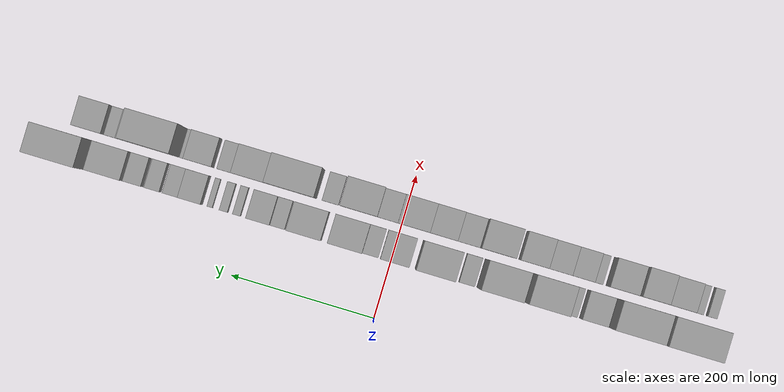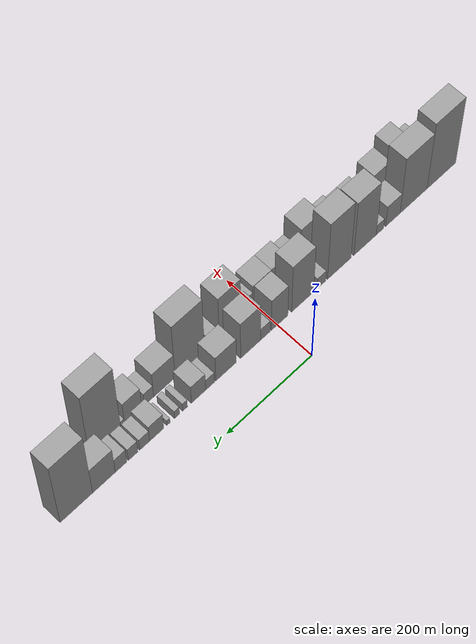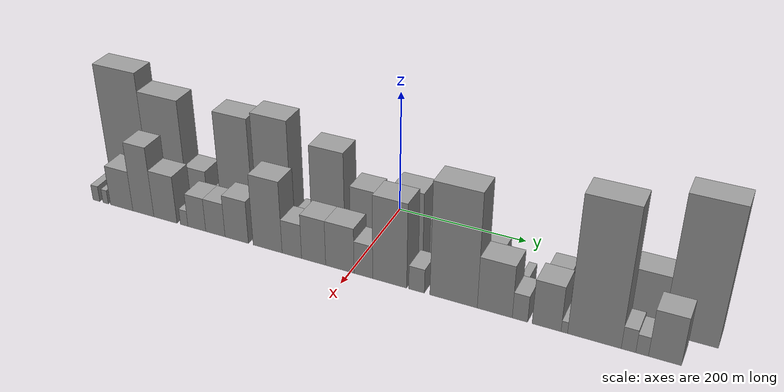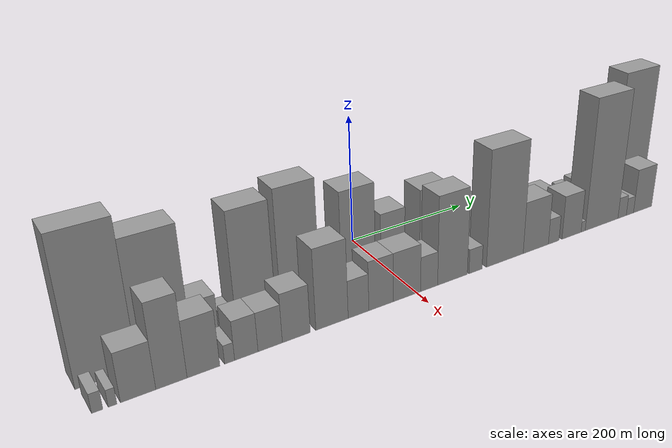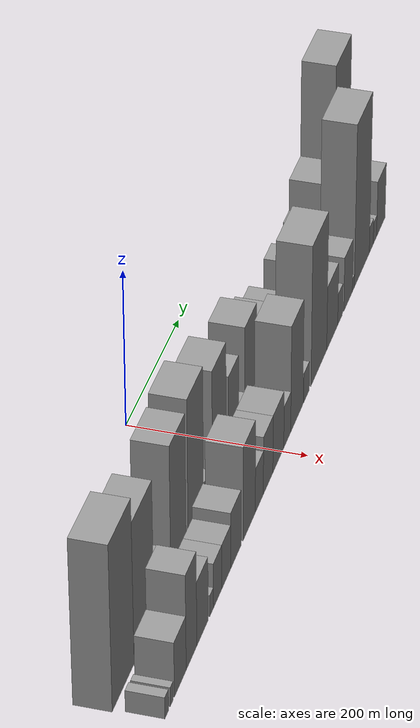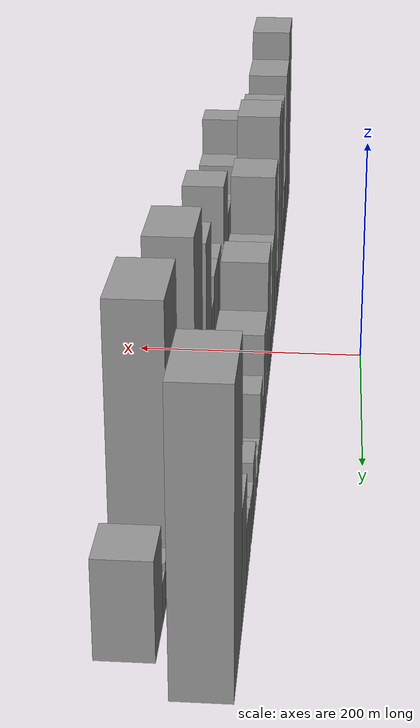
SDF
<sdf version="1.6">
 <world name="default">
  <scene>
   <sky><clouds><speed>12</speed></clouds></sky>
   <ambient>0.4 0.4 0.4 1</ambient>
   <background>0.7 0.7 0.7 1</background>
   <shadows>1</shadows>
  </scene>
  <gravity>0 0 -9.8066</gravity>
  <magnetic_field>6e-06 2.3e-05 -4.2e-05</magnetic_field>
  <physics default="0" name="default_physics" type="ode">
   <ode>
    <solver>
     <type>quick</type>
     <iters>10</iters>
     <sor>1.0</sor>
     <use_dynamic_moi_rescaling>0</use_dynamic_moi_rescaling>
    </solver>
    <constraints>
     <cfm>0</cfm>
     <erp>0.2</erp>
     <contact_max_correcting_vel>100</contact_max_correcting_vel>
     <contact_surface_layer>0.001</contact_surface_layer>
    </constraints>
   </ode>
   <max_step_size>0.004</max_step_size>
   <real_time_factor>1</real_time_factor>
   <real_time_update_rate>250</real_time_update_rate>
  </physics>
  <light name="sun" type="directional">
   <pose>0 0 10 0 0 0</pose>
   <diffuse>0.8 0.8 0.8 1</diffuse>
   <specular>0.2 0.2 0.2 1</specular>
   <attenuation>
    <range>1000</range>
    <constant>0.9</constant>
    <linear>0.01</linear>
    <quadratic>0.001</quadratic>
   </attenuation>
   <direction>-0.5 0.1 -0.9</direction>
  </light>
  <model name="building_1">
   <static>1</static>
   <pose>100.0000 -407.0354 0 0.000000 0.000000 0.000000</pose>
   <link name="link">
    <pose>0 0 103.50 0 0 0</pose>
    <collision name="collision"><geometry><box><size>40.0000 73.9293 207.0000</size></box></geometry></collision>
    <visual name="visual">
     <cast_shadows>0</cast_shadows>
     <geometry><box><size>40.0000 73.9293 207.0000</size></box></geometry>
     <material>
      <script>
       <uri>model://grey_wall/materials/scripts</uri>
       <uri>model://grey_wall/materials/textures</uri>
       <name>vrc/grey_wall</name>
      </script>
     </material>
    </visual>
   </link>
  </model>
  <model name="building_2">
   <static>1</static>
   <pose>100.0000 -335.6535 0 0.000000 0.000000 0.000000</pose>
   <link name="link">
    <pose>0 0 88.50 0 0 0</pose>
    <collision name="collision"><geometry><box><size>40.0000 68.8345 177.0000</size></box></geometry></collision>
    <visual name="visual">
     <cast_shadows>0</cast_shadows>
     <geometry><box><size>40.0000 68.8345 177.0000</size></box></geometry>
     <material>
      <script>
       <uri>model://grey_wall/materials/scripts</uri>
       <uri>model://grey_wall/materials/textures</uri>
       <name>vrc/grey_wall</name>
      </script>
     </material>
    </visual>
   </link>
  </model>
  <model name="building_3">
   <static>1</static>
   <pose>100.0000 -283.0258 0 0.000000 0.000000 0.000000</pose>
   <link name="link">
    <pose>0 0 33.00 0 0 0</pose>
    <collision name="collision"><geometry><box><size>40.0000 36.4208 66.0000</size></box></geometry></collision>
    <visual name="visual">
     <cast_shadows>0</cast_shadows>
     <geometry><box><size>40.0000 36.4208 66.0000</size></box></geometry>
     <material>
      <script>
       <uri>model://grey_wall/materials/scripts</uri>
       <uri>model://grey_wall/materials/textures</uri>
       <name>vrc/grey_wall</name>
      </script>
     </material>
    </visual>
   </link>
  </model>
  <model name="building_4">
   <static>1</static>
   <pose>100.0000 -250.5528 0 0.000000 0.000000 0.000000</pose>
   <link name="link">
    <pose>0 0 16.50 0 0 0</pose>
    <collision name="collision"><geometry><box><size>40.0000 18.5253 33.0000</size></box></geometry></collision>
    <visual name="visual">
     <cast_shadows>0</cast_shadows>
     <geometry><box><size>40.0000 18.5253 33.0000</size></box></geometry>
     <material>
      <script>
       <uri>model://grey_wall/materials/scripts</uri>
       <uri>model://grey_wall/materials/textures</uri>
       <name>vrc/grey_wall</name>
      </script>
     </material>
    </visual>
   </link>
  </model>
  <model name="building_5">
   <static>1</static>
   <pose>100.0000 -213.3810 0 0.000000 0.000000 0.000000</pose>
   <link name="link">
    <pose>0 0 87.00 0 0 0</pose>
    <collision name="collision"><geometry><box><size>40.0000 55.8183 174.0000</size></box></geometry></collision>
    <visual name="visual">
     <cast_shadows>0</cast_shadows>
     <geometry><box><size>40.0000 55.8183 174.0000</size></box></geometry>
     <material>
      <script>
       <uri>model://grey_wall/materials/scripts</uri>
       <uri>model://grey_wall/materials/textures</uri>
       <name>vrc/grey_wall</name>
      </script>
     </material>
    </visual>
   </link>
  </model>
  <model name="building_6">
   <static>1</static>
   <pose>100.0000 -149.5200 0 0.000000 0.000000 0.000000</pose>
   <link name="link">
    <pose>0 0 93.00 0 0 0</pose>
    <collision name="collision"><geometry><box><size>40.0000 57.9037 186.0000</size></box></geometry></collision>
    <visual name="visual">
     <cast_shadows>0</cast_shadows>
     <geometry><box><size>40.0000 57.9037 186.0000</size></box></geometry>
     <material>
      <script>
       <uri>model://grey_wall/materials/scripts</uri>
       <uri>model://grey_wall/materials/textures</uri>
       <name>vrc/grey_wall</name>
      </script>
     </material>
    </visual>
   </link>
  </model>
  <model name="building_7">
   <static>1</static>
   <pose>100.0000 -105.8171 0 0.000000 0.000000 0.000000</pose>
   <link name="link">
    <pose>0 0 18.00 0 0 0</pose>
    <collision name="collision"><geometry><box><size>40.0000 21.5021 36.0000</size></box></geometry></collision>
    <visual name="visual">
     <cast_shadows>0</cast_shadows>
     <geometry><box><size>40.0000 21.5021 36.0000</size></box></geometry>
     <material>
      <script>
       <uri>model://grey_wall/materials/scripts</uri>
       <uri>model://grey_wall/materials/textures</uri>
       <name>vrc/grey_wall</name>
      </script>
     </material>
    </visual>
   </link>
  </model>
  <model name="building_8">
   <static>1</static>
   <pose>100.0000 -60.3611 0 0.000000 0.000000 0.000000</pose>
   <link name="link">
    <pose>0 0 78.00 0 0 0</pose>
    <collision name="collision"><geometry><box><size>40.0000 53.4098 156.0000</size></box></geometry></collision>
    <visual name="visual">
     <cast_shadows>0</cast_shadows>
     <geometry><box><size>40.0000 53.4098 156.0000</size></box></geometry>
     <material>
      <script>
       <uri>model://grey_wall/materials/scripts</uri>
       <uri>model://grey_wall/materials/textures</uri>
       <name>vrc/grey_wall</name>
      </script>
     </material>
    </visual>
   </link>
  </model>
  <model name="building_9">
   <static>1</static>
   <pose>100.0000 -4.8442 0 0.000000 0.000000 0.000000</pose>
   <link name="link">
    <pose>0 0 52.50 0 0 0</pose>
    <collision name="collision"><geometry><box><size>40.0000 39.6240 105.0000</size></box></geometry></collision>
    <visual name="visual">
     <cast_shadows>0</cast_shadows>
     <geometry><box><size>40.0000 39.6240 105.0000</size></box></geometry>
     <material>
      <script>
       <uri>model://grey_wall/materials/scripts</uri>
       <uri>model://grey_wall/materials/textures</uri>
       <name>vrc/grey_wall</name>
      </script>
     </material>
    </visual>
   </link>
  </model>
  <model name="building_10">
   <static>1</static>
   <pose>100.0000 29.0621 0 0.000000 0.000000 0.000000</pose>
   <link name="link">
    <pose>0 0 19.50 0 0 0</pose>
    <collision name="collision"><geometry><box><size>40.0000 22.1886 39.0000</size></box></geometry></collision>
    <visual name="visual">
     <cast_shadows>0</cast_shadows>
     <geometry><box><size>40.0000 22.1886 39.0000</size></box></geometry>
     <material>
      <script>
       <uri>model://grey_wall/materials/scripts</uri>
       <uri>model://grey_wall/materials/textures</uri>
       <name>vrc/grey_wall</name>
      </script>
     </material>
    </visual>
   </link>
  </model>
  <model name="building_11">
   <static>1</static>
   <pose>100.0000 63.8372 0 0.000000 0.000000 0.000000</pose>
   <link name="link">
    <pose>0 0 61.50 0 0 0</pose>
    <collision name="collision"><geometry><box><size>40.0000 47.3616 123.0000</size></box></geometry></collision>
    <visual name="visual">
     <cast_shadows>0</cast_shadows>
     <geometry><box><size>40.0000 47.3616 123.0000</size></box></geometry>
     <material>
      <script>
       <uri>model://grey_wall/materials/scripts</uri>
       <uri>model://grey_wall/materials/textures</uri>
       <name>vrc/grey_wall</name>
      </script>
     </material>
    </visual>
   </link>
  </model>
  <model name="building_12">
   <static>1</static>
   <pose>100.0000 121.5338 0 0.000000 0.000000 0.000000</pose>
   <link name="link">
    <pose>0 0 42.00 0 0 0</pose>
    <collision name="collision"><geometry><box><size>40.0000 48.0315 84.0000</size></box></geometry></collision>
    <visual name="visual">
     <cast_shadows>0</cast_shadows>
     <geometry><box><size>40.0000 48.0315 84.0000</size></box></geometry>
     <material>
      <script>
       <uri>model://grey_wall/materials/scripts</uri>
       <uri>model://grey_wall/materials/textures</uri>
       <name>vrc/grey_wall</name>
      </script>
     </material>
    </visual>
   </link>
  </model>
  <model name="building_13">
   <static>1</static>
   <pose>100.0000 158.7910 0 0.000000 0.000000 0.000000</pose>
   <link name="link">
    <pose>0 0 18.00 0 0 0</pose>
    <collision name="collision"><geometry><box><size>40.0000 20.4830 36.0000</size></box></geometry></collision>
    <visual name="visual">
     <cast_shadows>0</cast_shadows>
     <geometry><box><size>40.0000 20.4830 36.0000</size></box></geometry>
     <material>
      <script>
       <uri>model://grey_wall/materials/scripts</uri>
       <uri>model://grey_wall/materials/textures</uri>
       <name>vrc/grey_wall</name>
      </script>
     </material>
    </visual>
   </link>
  </model>
  <model name="building_14">
   <static>1</static>
   <pose>100.0000 185.4451 0 0.000000 0.000000 0.000000</pose>
   <link name="link">
    <pose>0 0 30.00 0 0 0</pose>
    <collision name="collision"><geometry><box><size>40.0000 32.8251 60.0000</size></box></geometry></collision>
    <visual name="visual">
     <cast_shadows>0</cast_shadows>
     <geometry><box><size>40.0000 32.8251 60.0000</size></box></geometry>
     <material>
      <script>
       <uri>model://grey_wall/materials/scripts</uri>
       <uri>model://grey_wall/materials/textures</uri>
       <name>vrc/grey_wall</name>
      </script>
     </material>
    </visual>
   </link>
  </model>
  <model name="building_15">
   <static>1</static>
   <pose>100.0000 216.3029 0 0.000000 0.000000 0.000000</pose>
   <link name="link">
    <pose>0 0 13.50 0 0 0</pose>
    <collision name="collision"><geometry><box><size>40.0000 10.8905 27.0000</size></box></geometry></collision>
    <visual name="visual">
     <cast_shadows>0</cast_shadows>
     <geometry><box><size>40.0000 10.8905 27.0000</size></box></geometry>
     <material>
      <script>
       <uri>model://grey_wall/materials/scripts</uri>
       <uri>model://grey_wall/materials/textures</uri>
       <name>vrc/grey_wall</name>
      </script>
     </material>
    </visual>
   </link>
  </model>
  <model name="building_16">
   <static>1</static>
   <pose>100.0000 234.5699 0 0.000000 0.000000 0.000000</pose>
   <link name="link">
    <pose>0 0 13.50 0 0 0</pose>
    <collision name="collision"><geometry><box><size>40.0000 11.6433 27.0000</size></box></geometry></collision>
    <visual name="visual">
     <cast_shadows>0</cast_shadows>
     <geometry><box><size>40.0000 11.6433 27.0000</size></box></geometry>
     <material>
      <script>
       <uri>model://grey_wall/materials/scripts</uri>
       <uri>model://grey_wall/materials/textures</uri>
       <name>vrc/grey_wall</name>
      </script>
     </material>
    </visual>
   </link>
  </model>
  <model name="building_17">
   <static>1</static>
   <pose>100.0000 254.1736 0 0.000000 0.000000 0.000000</pose>
   <link name="link">
    <pose>0 0 9.00 0 0 0</pose>
    <collision name="collision"><geometry><box><size>40.0000 7.5641 18.0000</size></box></geometry></collision>
    <visual name="visual">
     <cast_shadows>0</cast_shadows>
     <geometry><box><size>40.0000 7.5641 18.0000</size></box></geometry>
     <material>
      <script>
       <uri>model://grey_wall/materials/scripts</uri>
       <uri>model://grey_wall/materials/textures</uri>
       <name>vrc/grey_wall</name>
      </script>
     </material>
    </visual>
   </link>
  </model>
  <model name="building_18">
   <static>1</static>
   <pose>100.0000 280.9609 0 0.000000 0.000000 0.000000</pose>
   <link name="link">
    <pose>0 0 27.00 0 0 0</pose>
    <collision name="collision"><geometry><box><size>40.0000 32.0106 54.0000</size></box></geometry></collision>
    <visual name="visual">
     <cast_shadows>0</cast_shadows>
     <geometry><box><size>40.0000 32.0106 54.0000</size></box></geometry>
     <material>
      <script>
       <uri>model://grey_wall/materials/scripts</uri>
       <uri>model://grey_wall/materials/textures</uri>
       <name>vrc/grey_wall</name>
      </script>
     </material>
    </visual>
   </link>
  </model>
  <model name="building_19">
   <static>1</static>
   <pose>100.0000 308.0544 0 0.000000 0.000000 0.000000</pose>
   <link name="link">
    <pose>0 0 19.50 0 0 0</pose>
    <collision name="collision"><geometry><box><size>40.0000 22.1763 39.0000</size></box></geometry></collision>
    <visual name="visual">
     <cast_shadows>0</cast_shadows>
     <geometry><box><size>40.0000 22.1763 39.0000</size></box></geometry>
     <material>
      <script>
       <uri>model://grey_wall/materials/scripts</uri>
       <uri>model://grey_wall/materials/textures</uri>
       <name>vrc/grey_wall</name>
      </script>
     </material>
    </visual>
   </link>
  </model>
  <model name="building_20">
   <static>1</static>
   <pose>100.0000 333.6877 0 0.000000 0.000000 0.000000</pose>
   <link name="link">
    <pose>0 0 21.00 0 0 0</pose>
    <collision name="collision"><geometry><box><size>40.0000 21.0903 42.0000</size></box></geometry></collision>
    <visual name="visual">
     <cast_shadows>0</cast_shadows>
     <geometry><box><size>40.0000 21.0903 42.0000</size></box></geometry>
     <material>
      <script>
       <uri>model://grey_wall/materials/scripts</uri>
       <uri>model://grey_wall/materials/textures</uri>
       <name>vrc/grey_wall</name>
      </script>
     </material>
    </visual>
   </link>
  </model>
  <model name="building_21">
   <static>1</static>
   <pose>100.0000 360.9736 0 0.000000 0.000000 0.000000</pose>
   <link name="link">
    <pose>0 0 24.00 0 0 0</pose>
    <collision name="collision"><geometry><box><size>40.0000 25.4815 48.0000</size></box></geometry></collision>
    <visual name="visual">
     <cast_shadows>0</cast_shadows>
     <geometry><box><size>40.0000 25.4815 48.0000</size></box></geometry>
     <material>
      <script>
       <uri>model://grey_wall/materials/scripts</uri>
       <uri>model://grey_wall/materials/textures</uri>
       <name>vrc/grey_wall</name>
      </script>
     </material>
    </visual>
   </link>
  </model>
  <model name="building_22">
   <static>1</static>
   <pose>100.0000 398.6728 0 0.000000 0.000000 0.000000</pose>
   <link name="link">
    <pose>0 0 45.00 0 0 0</pose>
    <collision name="collision"><geometry><box><size>40.0000 49.9169 90.0000</size></box></geometry></collision>
    <visual name="visual">
     <cast_shadows>0</cast_shadows>
     <geometry><box><size>40.0000 49.9169 90.0000</size></box></geometry>
     <material>
      <script>
       <uri>model://grey_wall/materials/scripts</uri>
       <uri>model://grey_wall/materials/textures</uri>
       <name>vrc/grey_wall</name>
      </script>
     </material>
    </visual>
   </link>
  </model>
  <model name="building_23">
   <static>1</static>
   <pose>100.0000 458.9811 0 0.000000 0.000000 0.000000</pose>
   <link name="link">
    <pose>0 0 108.00 0 0 0</pose>
    <collision name="collision"><geometry><box><size>40.0000 70.6996 216.0000</size></box></geometry></collision>
    <visual name="visual">
     <cast_shadows>0</cast_shadows>
     <geometry><box><size>40.0000 70.6996 216.0000</size></box></geometry>
     <material>
      <script>
       <uri>model://grey_wall/materials/scripts</uri>
       <uri>model://grey_wall/materials/textures</uri>
       <name>vrc/grey_wall</name>
      </script>
     </material>
    </visual>
   </link>
  </model>
  <model name="building_24">
   <static>1</static>
   <pose>152.0000 -433.6236 0 0.000000 0.000000 0.000000</pose>
   <link name="link">
    <pose>0 0 13.50 0 0 0</pose>
    <collision name="collision"><geometry><box><size>40.0000 12.7528 27.0000</size></box></geometry></collision>
    <visual name="visual">
     <cast_shadows>0</cast_shadows>
     <geometry><box><size>40.0000 12.7528 27.0000</size></box></geometry>
     <material>
      <script>
       <uri>model://grey_wall/materials/scripts</uri>
       <uri>model://grey_wall/materials/textures</uri>
       <name>vrc/grey_wall</name>
      </script>
     </material>
    </visual>
   </link>
  </model>
  <model name="building_25">
   <static>1</static>
   <pose>152.0000 -416.2803 0 0.000000 0.000000 0.000000</pose>
   <link name="link">
    <pose>0 0 12.00 0 0 0</pose>
    <collision name="collision"><geometry><box><size>40.0000 9.9339 24.0000</size></box></geometry></collision>
    <visual name="visual">
     <cast_shadows>0</cast_shadows>
     <geometry><box><size>40.0000 9.9339 24.0000</size></box></geometry>
     <material>
      <script>
       <uri>model://grey_wall/materials/scripts</uri>
       <uri>model://grey_wall/materials/textures</uri>
       <name>vrc/grey_wall</name>
      </script>
     </material>
    </visual>
   </link>
  </model>
  <model name="building_26">
   <static>1</static>
   <pose>152.0000 -386.6167 0 0.000000 0.000000 0.000000</pose>
   <link name="link">
    <pose>0 0 34.50 0 0 0</pose>
    <collision name="collision"><geometry><box><size>40.0000 41.3932 69.0000</size></box></geometry></collision>
    <visual name="visual">
     <cast_shadows>0</cast_shadows>
     <geometry><box><size>40.0000 41.3932 69.0000</size></box></geometry>
     <material>
      <script>
       <uri>model://grey_wall/materials/scripts</uri>
       <uri>model://grey_wall/materials/textures</uri>
       <name>vrc/grey_wall</name>
      </script>
     </material>
    </visual>
   </link>
  </model>
  <model name="building_27">
   <static>1</static>
   <pose>152.0000 -346.8897 0 0.000000 0.000000 0.000000</pose>
   <link name="link">
    <pose>0 0 60.00 0 0 0</pose>
    <collision name="collision"><geometry><box><size>40.0000 38.0607 120.0000</size></box></geometry></collision>
    <visual name="visual">
     <cast_shadows>0</cast_shadows>
     <geometry><box><size>40.0000 38.0607 120.0000</size></box></geometry>
     <material>
      <script>
       <uri>model://grey_wall/materials/scripts</uri>
       <uri>model://grey_wall/materials/textures</uri>
       <name>vrc/grey_wall</name>
      </script>
     </material>
    </visual>
   </link>
  </model>
  <model name="building_28">
   <static>1</static>
   <pose>152.0000 -307.1910 0 0.000000 0.000000 0.000000</pose>
   <link name="link">
    <pose>0 0 40.50 0 0 0</pose>
    <collision name="collision"><geometry><box><size>40.0000 41.3369 81.0000</size></box></geometry></collision>
    <visual name="visual">
     <cast_shadows>0</cast_shadows>
     <geometry><box><size>40.0000 41.3369 81.0000</size></box></geometry>
     <material>
      <script>
       <uri>model://grey_wall/materials/scripts</uri>
       <uri>model://grey_wall/materials/textures</uri>
       <name>vrc/grey_wall</name>
      </script>
     </material>
    </visual>
   </link>
  </model>
  <model name="building_29">
   <static>1</static>
   <pose>152.0000 -273.9815 0 0.000000 0.000000 0.000000</pose>
   <link name="link">
    <pose>0 0 13.50 0 0 0</pose>
    <collision name="collision"><geometry><box><size>40.0000 13.0821 27.0000</size></box></geometry></collision>
    <visual name="visual">
     <cast_shadows>0</cast_shadows>
     <geometry><box><size>40.0000 13.0821 27.0000</size></box></geometry>
     <material>
      <script>
       <uri>model://grey_wall/materials/scripts</uri>
       <uri>model://grey_wall/materials/textures</uri>
       <name>vrc/grey_wall</name>
      </script>
     </material>
    </visual>
   </link>
  </model>
  <model name="building_30">
   <static>1</static>
   <pose>152.0000 -251.9125 0 0.000000 0.000000 0.000000</pose>
   <link name="link">
    <pose>0 0 28.50 0 0 0</pose>
    <collision name="collision"><geometry><box><size>40.0000 31.0559 57.0000</size></box></geometry></collision>
    <visual name="visual">
     <cast_shadows>0</cast_shadows>
     <geometry><box><size>40.0000 31.0559 57.0000</size></box></geometry>
     <material>
      <script>
       <uri>model://grey_wall/materials/scripts</uri>
       <uri>model://grey_wall/materials/textures</uri>
       <name>vrc/grey_wall</name>
      </script>
     </material>
    </visual>
   </link>
  </model>
  <model name="building_31">
   <static>1</static>
   <pose>152.0000 -219.7910 0 0.000000 0.000000 0.000000</pose>
   <link name="link">
    <pose>0 0 28.50 0 0 0</pose>
    <collision name="collision"><geometry><box><size>40.0000 33.1871 57.0000</size></box></geometry></collision>
    <visual name="visual">
     <cast_shadows>0</cast_shadows>
     <geometry><box><size>40.0000 33.1871 57.0000</size></box></geometry>
     <material>
      <script>
       <uri>model://grey_wall/materials/scripts</uri>
       <uri>model://grey_wall/materials/textures</uri>
       <name>vrc/grey_wall</name>
      </script>
     </material>
    </visual>
   </link>
  </model>
  <model name="building_32">
   <static>1</static>
   <pose>152.0000 -183.4947 0 0.000000 0.000000 0.000000</pose>
   <link name="link">
    <pose>0 0 36.00 0 0 0</pose>
    <collision name="collision"><geometry><box><size>40.0000 39.4054 72.0000</size></box></geometry></collision>
    <visual name="visual">
     <cast_shadows>0</cast_shadows>
     <geometry><box><size>40.0000 39.4054 72.0000</size></box></geometry>
     <material>
      <script>
       <uri>model://grey_wall/materials/scripts</uri>
       <uri>model://grey_wall/materials/textures</uri>
       <name>vrc/grey_wall</name>
      </script>
     </material>
    </visual>
   </link>
  </model>
  <model name="building_33">
   <static>1</static>
   <pose>152.0000 -131.9652 0 0.000000 0.000000 0.000000</pose>
   <link name="link">
    <pose>0 0 60.00 0 0 0</pose>
    <collision name="collision"><geometry><box><size>40.0000 47.6536 120.0000</size></box></geometry></collision>
    <visual name="visual">
     <cast_shadows>0</cast_shadows>
     <geometry><box><size>40.0000 47.6536 120.0000</size></box></geometry>
     <material>
      <script>
       <uri>model://grey_wall/materials/scripts</uri>
       <uri>model://grey_wall/materials/textures</uri>
       <name>vrc/grey_wall</name>
      </script>
     </material>
    </visual>
   </link>
  </model>
  <model name="building_34">
   <static>1</static>
   <pose>152.0000 -92.3917 0 0.000000 0.000000 0.000000</pose>
   <link name="link">
    <pose>0 0 28.50 0 0 0</pose>
    <collision name="collision"><geometry><box><size>40.0000 31.4934 57.0000</size></box></geometry></collision>
    <visual name="visual">
     <cast_shadows>0</cast_shadows>
     <geometry><box><size>40.0000 31.4934 57.0000</size></box></geometry>
     <material>
      <script>
       <uri>model://grey_wall/materials/scripts</uri>
       <uri>model://grey_wall/materials/textures</uri>
       <name>vrc/grey_wall</name>
      </script>
     </material>
    </visual>
   </link>
  </model>
  <model name="building_35">
   <static>1</static>
   <pose>152.0000 -57.4854 0 0.000000 0.000000 0.000000</pose>
   <link name="link">
    <pose>0 0 37.50 0 0 0</pose>
    <collision name="collision"><geometry><box><size>40.0000 38.3193 75.0000</size></box></geometry></collision>
    <visual name="visual">
     <cast_shadows>0</cast_shadows>
     <geometry><box><size>40.0000 38.3193 75.0000</size></box></geometry>
     <material>
      <script>
       <uri>model://grey_wall/materials/scripts</uri>
       <uri>model://grey_wall/materials/textures</uri>
       <name>vrc/grey_wall</name>
      </script>
     </material>
    </visual>
   </link>
  </model>
  <model name="building_36">
   <static>1</static>
   <pose>152.0000 -16.0925 0 0.000000 0.000000 0.000000</pose>
   <link name="link">
    <pose>0 0 37.50 0 0 0</pose>
    <collision name="collision"><geometry><box><size>40.0000 44.4665 75.0000</size></box></geometry></collision>
    <visual name="visual">
     <cast_shadows>0</cast_shadows>
     <geometry><box><size>40.0000 44.4665 75.0000</size></box></geometry>
     <material>
      <script>
       <uri>model://grey_wall/materials/scripts</uri>
       <uri>model://grey_wall/materials/textures</uri>
       <name>vrc/grey_wall</name>
      </script>
     </material>
    </visual>
   </link>
  </model>
  <model name="building_37">
   <static>1</static>
   <pose>152.0000 20.3589 0 0.000000 0.000000 0.000000</pose>
   <link name="link">
    <pose>0 0 27.00 0 0 0</pose>
    <collision name="collision"><geometry><box><size>40.0000 28.4362 54.0000</size></box></geometry></collision>
    <visual name="visual">
     <cast_shadows>0</cast_shadows>
     <geometry><box><size>40.0000 28.4362 54.0000</size></box></geometry>
     <material>
      <script>
       <uri>model://grey_wall/materials/scripts</uri>
       <uri>model://grey_wall/materials/textures</uri>
       <name>vrc/grey_wall</name>
      </script>
     </material>
    </visual>
   </link>
  </model>
  <model name="building_38">
   <static>1</static>
   <pose>152.0000 60.2336 0 0.000000 0.000000 0.000000</pose>
   <link name="link">
    <pose>0 0 69.00 0 0 0</pose>
    <collision name="collision"><geometry><box><size>40.0000 51.3134 138.0000</size></box></geometry></collision>
    <visual name="visual">
     <cast_shadows>0</cast_shadows>
     <geometry><box><size>40.0000 51.3134 138.0000</size></box></geometry>
     <material>
      <script>
       <uri>model://grey_wall/materials/scripts</uri>
       <uri>model://grey_wall/materials/textures</uri>
       <name>vrc/grey_wall</name>
      </script>
     </material>
    </visual>
   </link>
  </model>
  <model name="building_39">
   <static>1</static>
   <pose>152.0000 100.4881 0 0.000000 0.000000 0.000000</pose>
   <link name="link">
    <pose>0 0 19.50 0 0 0</pose>
    <collision name="collision"><geometry><box><size>40.0000 23.1955 39.0000</size></box></geometry></collision>
    <visual name="visual">
     <cast_shadows>0</cast_shadows>
     <geometry><box><size>40.0000 23.1955 39.0000</size></box></geometry>
     <material>
      <script>
       <uri>model://grey_wall/materials/scripts</uri>
       <uri>model://grey_wall/materials/textures</uri>
       <name>vrc/grey_wall</name>
      </script>
     </material>
    </visual>
   </link>
  </model>
  <model name="building_40">
   <static>1</static>
   <pose>152.0000 154.2061 0 0.000000 0.000000 0.000000</pose>
   <link name="link">
    <pose>0 0 91.50 0 0 0</pose>
    <collision name="collision"><geometry><box><size>40.0000 68.2406 183.0000</size></box></geometry></collision>
    <visual name="visual">
     <cast_shadows>0</cast_shadows>
     <geometry><box><size>40.0000 68.2406 183.0000</size></box></geometry>
     <material>
      <script>
       <uri>model://grey_wall/materials/scripts</uri>
       <uri>model://grey_wall/materials/textures</uri>
       <name>vrc/grey_wall</name>
      </script>
     </material>
    </visual>
   </link>
  </model>
  <model name="building_41">
   <static>1</static>
   <pose>152.0000 212.7995 0 0.000000 0.000000 0.000000</pose>
   <link name="link">
    <pose>0 0 42.00 0 0 0</pose>
    <collision name="collision"><geometry><box><size>40.0000 48.9462 84.0000</size></box></geometry></collision>
    <visual name="visual">
     <cast_shadows>0</cast_shadows>
     <geometry><box><size>40.0000 48.9462 84.0000</size></box></geometry>
     <material>
      <script>
       <uri>model://grey_wall/materials/scripts</uri>
       <uri>model://grey_wall/materials/textures</uri>
       <name>vrc/grey_wall</name>
      </script>
     </material>
    </visual>
   </link>
  </model>
  <model name="building_42">
   <static>1</static>
   <pose>152.0000 247.8953 0 0.000000 0.000000 0.000000</pose>
   <link name="link">
    <pose>0 0 21.00 0 0 0</pose>
    <collision name="collision"><geometry><box><size>40.0000 21.2454 42.0000</size></box></geometry></collision>
    <visual name="visual">
     <cast_shadows>0</cast_shadows>
     <geometry><box><size>40.0000 21.2454 42.0000</size></box></geometry>
     <material>
      <script>
       <uri>model://grey_wall/materials/scripts</uri>
       <uri>model://grey_wall/materials/textures</uri>
       <name>vrc/grey_wall</name>
      </script>
     </material>
    </visual>
   </link>
  </model>
  <model name="building_43">
   <static>1</static>
   <pose>152.0000 284.0366 0 0.000000 0.000000 0.000000</pose>
   <link name="link">
    <pose>0 0 36.00 0 0 0</pose>
    <collision name="collision"><geometry><box><size>40.0000 39.0371 72.0000</size></box></geometry></collision>
    <visual name="visual">
     <cast_shadows>0</cast_shadows>
     <geometry><box><size>40.0000 39.0371 72.0000</size></box></geometry>
     <material>
      <script>
       <uri>model://grey_wall/materials/scripts</uri>
       <uri>model://grey_wall/materials/textures</uri>
       <name>vrc/grey_wall</name>
      </script>
     </material>
    </visual>
   </link>
  </model>
  <model name="building_44">
   <static>1</static>
   <pose>152.0000 307.8792 0 0.000000 0.000000 0.000000</pose>
   <link name="link">
    <pose>0 0 9.00 0 0 0</pose>
    <collision name="collision"><geometry><box><size>40.0000 8.6481 18.0000</size></box></geometry></collision>
    <visual name="visual">
     <cast_shadows>0</cast_shadows>
     <geometry><box><size>40.0000 8.6481 18.0000</size></box></geometry>
     <material>
      <script>
       <uri>model://grey_wall/materials/scripts</uri>
       <uri>model://grey_wall/materials/textures</uri>
       <name>vrc/grey_wall</name>
      </script>
     </material>
    </visual>
   </link>
  </model>
  <model name="building_45">
   <static>1</static>
   <pose>152.0000 347.3015 0 0.000000 0.000000 0.000000</pose>
   <link name="link">
    <pose>0 0 108.00 0 0 0</pose>
    <collision name="collision"><geometry><box><size>40.0000 70.1964 216.0000</size></box></geometry></collision>
    <visual name="visual">
     <cast_shadows>0</cast_shadows>
     <geometry><box><size>40.0000 70.1964 216.0000</size></box></geometry>
     <material>
      <script>
       <uri>model://grey_wall/materials/scripts</uri>
       <uri>model://grey_wall/materials/textures</uri>
       <name>vrc/grey_wall</name>
      </script>
     </material>
    </visual>
   </link>
  </model>
  <model name="building_46">
   <static>1</static>
   <pose>152.0000 391.6480 0 0.000000 0.000000 0.000000</pose>
   <link name="link">
    <pose>0 0 18.00 0 0 0</pose>
    <collision name="collision"><geometry><box><size>40.0000 18.4966 36.0000</size></box></geometry></collision>
    <visual name="visual">
     <cast_shadows>0</cast_shadows>
     <geometry><box><size>40.0000 18.4966 36.0000</size></box></geometry>
     <material>
      <script>
       <uri>model://grey_wall/materials/scripts</uri>
       <uri>model://grey_wall/materials/textures</uri>
       <name>vrc/grey_wall</name>
      </script>
     </material>
    </visual>
   </link>
  </model>
  <model name="building_47">
   <static>1</static>
   <pose>152.0000 408.9299 0 0.000000 0.000000 0.000000</pose>
   <link name="link">
    <pose>0 0 15.00 0 0 0</pose>
    <collision name="collision"><geometry><box><size>40.0000 16.0673 30.0000</size></box></geometry></collision>
    <visual name="visual">
     <cast_shadows>0</cast_shadows>
     <geometry><box><size>40.0000 16.0673 30.0000</size></box></geometry>
     <material>
      <script>
       <uri>model://grey_wall/materials/scripts</uri>
       <uri>model://grey_wall/materials/textures</uri>
       <name>vrc/grey_wall</name>
      </script>
     </material>
    </visual>
   </link>
  </model>
  <model name="building_48">
   <static>1</static>
   <pose>152.0000 437.6407 0 0.000000 0.000000 0.000000</pose>
   <link name="link">
    <pose>0 0 37.50 0 0 0</pose>
    <collision name="collision"><geometry><box><size>40.0000 41.3544 75.0000</size></box></geometry></collision>
    <visual name="visual">
     <cast_shadows>0</cast_shadows>
     <geometry><box><size>40.0000 41.3544 75.0000</size></box></geometry>
     <material>
      <script>
       <uri>model://grey_wall/materials/scripts</uri>
       <uri>model://grey_wall/materials/textures</uri>
       <name>vrc/grey_wall</name>
      </script>
     </material>
    </visual>
   </link>
  </model>
 </world>
</sdf>
